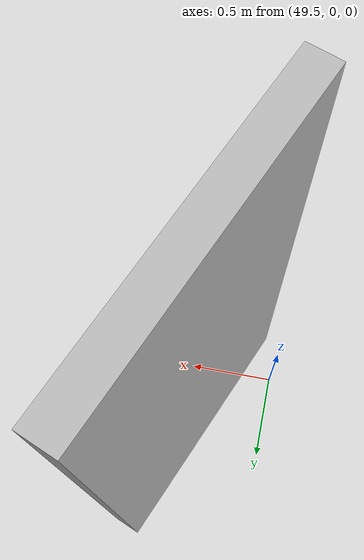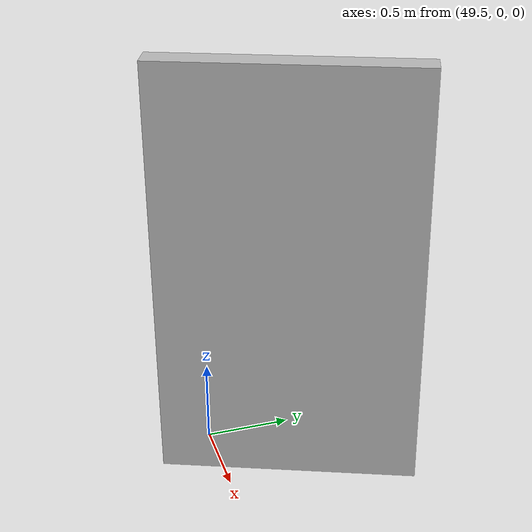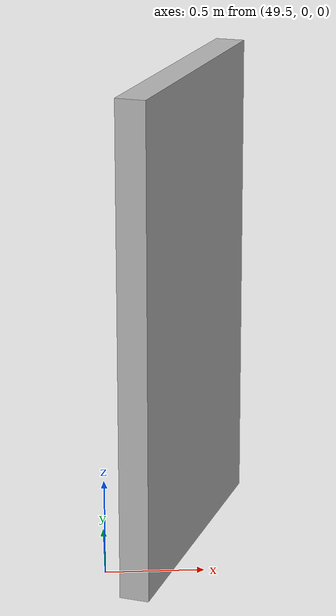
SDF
<?xml version="1.0" ?>
<sdf version="1.6">
  <model name="sps_0333">
    <pose frame="">0 0 0 0 -0 0</pose>
    <static>0</static>
    <self_collide>0</self_collide>
    <allow_auto_disable>0</allow_auto_disable>
    <link name="Wall10237">
      <kinematic>0</kinematic>
      <gravity>1</gravity>
      <self_collide>0</self_collide>
      <collision name="collision">
        <geometry>
          <box>
            <size>1.50365 0.15 2.5</size>
          </box>
        </geometry>
        <pose frame="">0 0 0 0 -0 0</pose>
      </collision>
      <visual name="visual">
        <geometry>
          <box>
            <size>1.50365 0.15 2.5</size>
          </box>
        </geometry>
        <pose frame="">0 0 0 0 -0 0</pose>
        <cast_shadows>1</cast_shadows>
        <transparency>0.0</transparency>
      </visual>
      <pose frame="">49.918 0.388686 1.25 0 0 -1.95714</pose>
    </link>
  </model>
</sdf>
